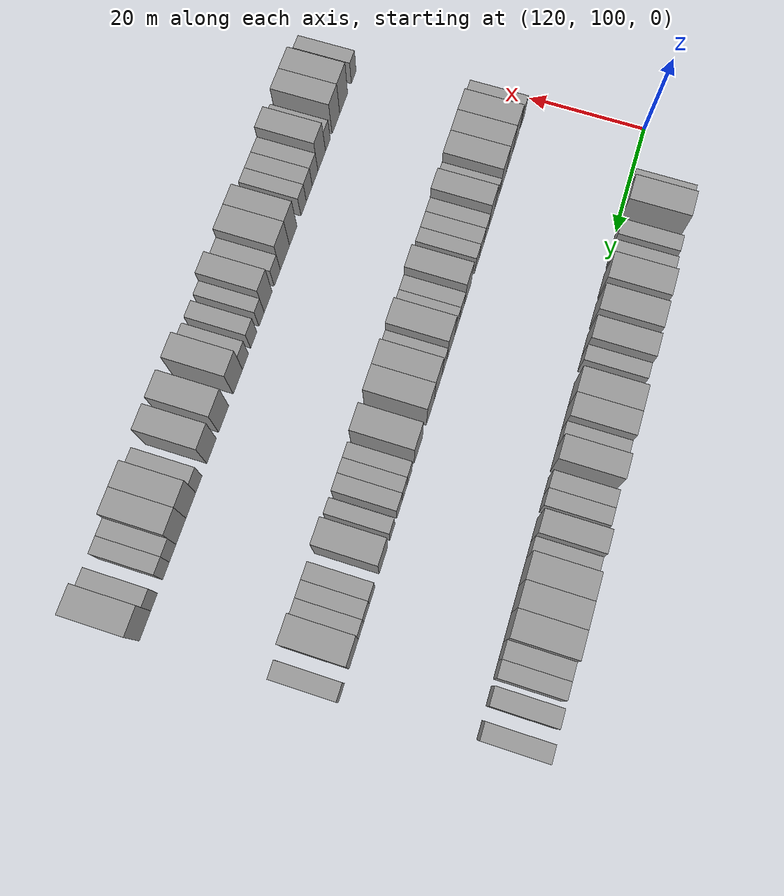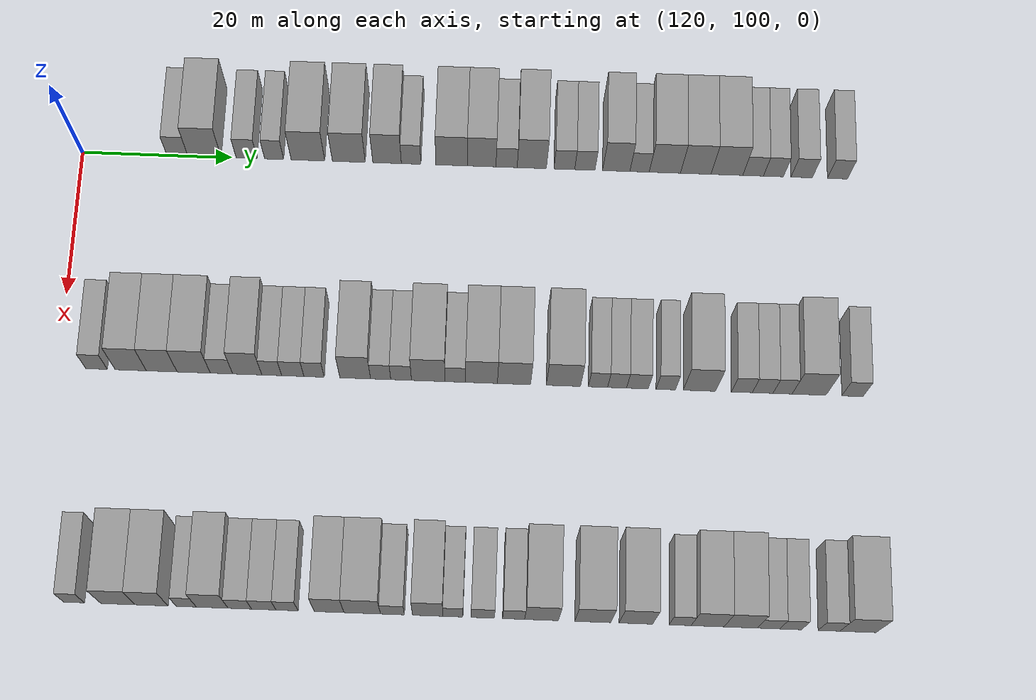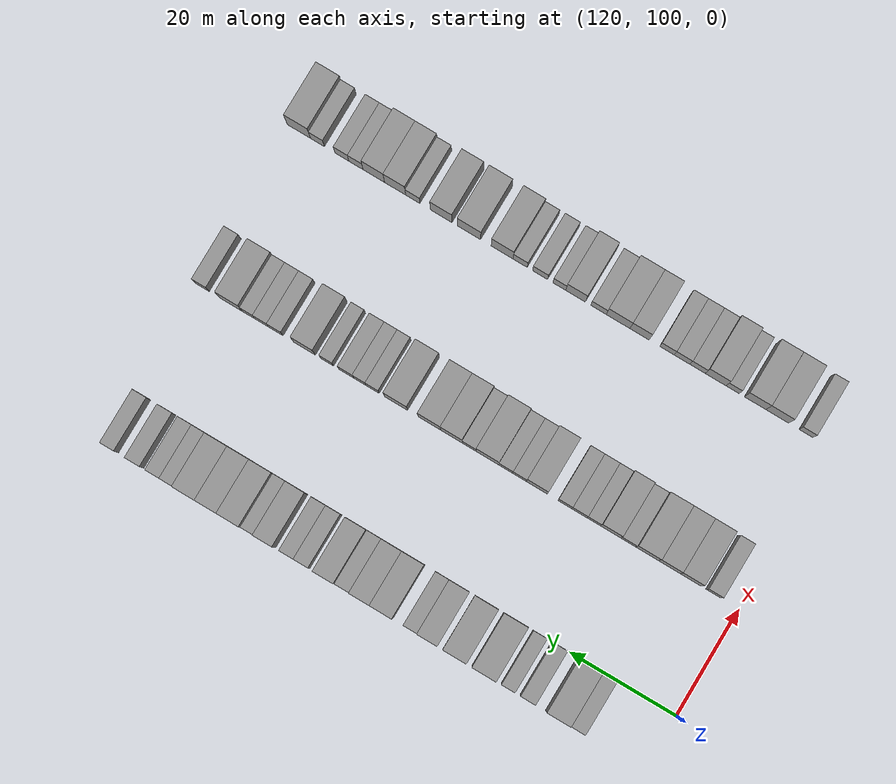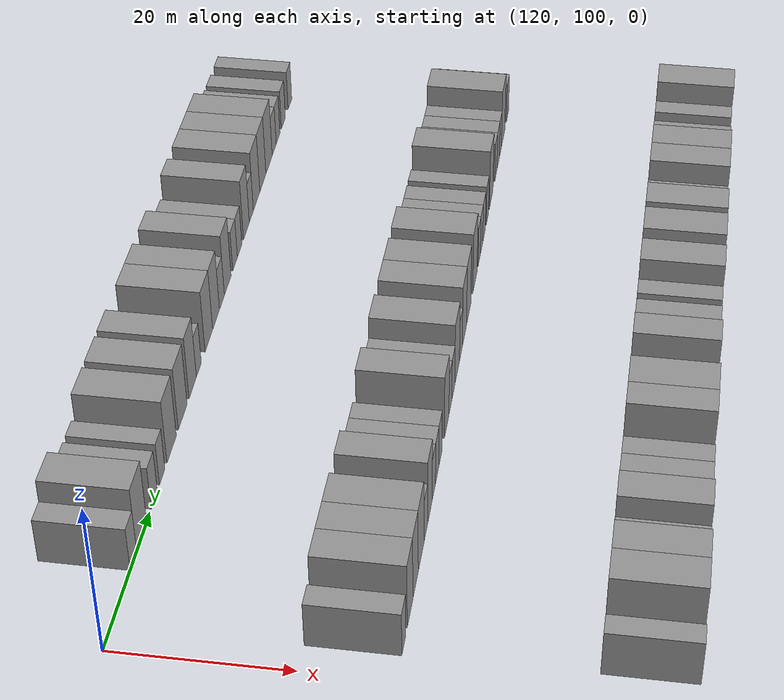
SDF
<sdf version="1.6">
 <world name="default">
  <model name="building_812">
   <static>1</static>
   <pose>115.0000 112.6629 0 0.000000 0.000000 0.000000</pose>
   <link name="link">
    <pose>0 0 3.00 0 0 0</pose>
    <collision name="collision"><geometry><box><size>10.0000 2.7988 6.0000</size></box></geometry></collision>
    <visual name="visual">
     <cast_shadows>0</cast_shadows>
     <geometry><box><size>10.0000 2.7988 6.0000</size></box></geometry>
     <material>
      <script>
       <uri>model://grey_wall/materials/scripts</uri>
       <uri>model://grey_wall/materials/textures</uri>
       <name>vrc/grey_wall</name>
      </script>
     </material>
    </visual>
   </link>
  </model>
  <model name="building_813">
   <static>1</static>
   <pose>115.0000 116.2817 0 0.000000 0.000000 0.000000</pose>
   <link name="link">
    <pose>0 0 4.50 0 0 0</pose>
    <collision name="collision"><geometry><box><size>10.0000 4.4386 9.0000</size></box></geometry></collision>
    <visual name="visual">
     <cast_shadows>0</cast_shadows>
     <geometry><box><size>10.0000 4.4386 9.0000</size></box></geometry>
     <material>
      <script>
       <uri>model://grey_wall/materials/scripts</uri>
       <uri>model://grey_wall/materials/textures</uri>
       <name>vrc/grey_wall</name>
      </script>
     </material>
    </visual>
   </link>
  </model>
  <model name="building_814">
   <static>1</static>
   <pose>115.0000 121.8972 0 0.000000 0.000000 0.000000</pose>
   <link name="link">
    <pose>0 0 3.00 0 0 0</pose>
    <collision name="collision"><geometry><box><size>10.0000 2.7925 6.0000</size></box></geometry></collision>
    <visual name="visual">
     <cast_shadows>0</cast_shadows>
     <geometry><box><size>10.0000 2.7925 6.0000</size></box></geometry>
     <material>
      <script>
       <uri>model://grey_wall/materials/scripts</uri>
       <uri>model://grey_wall/materials/textures</uri>
       <name>vrc/grey_wall</name>
      </script>
     </material>
    </visual>
   </link>
  </model>
  <model name="building_815">
   <static>1</static>
   <pose>115.0000 125.5632 0 0.000000 0.000000 0.000000</pose>
   <link name="link">
    <pose>0 0 3.00 0 0 0</pose>
    <collision name="collision"><geometry><box><size>10.0000 2.5395 6.0000</size></box></geometry></collision>
    <visual name="visual">
     <cast_shadows>0</cast_shadows>
     <geometry><box><size>10.0000 2.5395 6.0000</size></box></geometry>
     <material>
      <script>
       <uri>model://grey_wall/materials/scripts</uri>
       <uri>model://grey_wall/materials/textures</uri>
       <name>vrc/grey_wall</name>
      </script>
     </material>
    </visual>
   </link>
  </model>
  <model name="building_816">
   <static>1</static>
   <pose>115.0000 130.0789 0 0.000000 0.000000 0.000000</pose>
   <link name="link">
    <pose>0 0 4.50 0 0 0</pose>
    <collision name="collision"><geometry><box><size>10.0000 4.4918 9.0000</size></box></geometry></collision>
    <visual name="visual">
     <cast_shadows>0</cast_shadows>
     <geometry><box><size>10.0000 4.4918 9.0000</size></box></geometry>
     <material>
      <script>
       <uri>model://grey_wall/materials/scripts</uri>
       <uri>model://grey_wall/materials/textures</uri>
       <name>vrc/grey_wall</name>
      </script>
     </material>
    </visual>
   </link>
  </model>
  <model name="building_817">
   <static>1</static>
   <pose>115.0000 135.5179 0 0.000000 0.000000 0.000000</pose>
   <link name="link">
    <pose>0 0 4.50 0 0 0</pose>
    <collision name="collision"><geometry><box><size>10.0000 4.3863 9.0000</size></box></geometry></collision>
    <visual name="visual">
     <cast_shadows>0</cast_shadows>
     <geometry><box><size>10.0000 4.3863 9.0000</size></box></geometry>
     <material>
      <script>
       <uri>model://grey_wall/materials/scripts</uri>
       <uri>model://grey_wall/materials/textures</uri>
       <name>vrc/grey_wall</name>
      </script>
     </material>
    </visual>
   </link>
  </model>
  <model name="building_818">
   <static>1</static>
   <pose>115.0000 140.6104 0 0.000000 0.000000 0.000000</pose>
   <link name="link">
    <pose>0 0 4.50 0 0 0</pose>
    <collision name="collision"><geometry><box><size>10.0000 3.7988 9.0000</size></box></geometry></collision>
    <visual name="visual">
     <cast_shadows>0</cast_shadows>
     <geometry><box><size>10.0000 3.7988 9.0000</size></box></geometry>
     <material>
      <script>
       <uri>model://grey_wall/materials/scripts</uri>
       <uri>model://grey_wall/materials/textures</uri>
       <name>vrc/grey_wall</name>
      </script>
     </material>
    </visual>
   </link>
  </model>
  <model name="building_819">
   <static>1</static>
   <pose>115.0000 143.8060 0 0.000000 0.000000 0.000000</pose>
   <link name="link">
    <pose>0 0 3.00 0 0 0</pose>
    <collision name="collision"><geometry><box><size>10.0000 2.5924 6.0000</size></box></geometry></collision>
    <visual name="visual">
     <cast_shadows>0</cast_shadows>
     <geometry><box><size>10.0000 2.5924 6.0000</size></box></geometry>
     <material>
      <script>
       <uri>model://grey_wall/materials/scripts</uri>
       <uri>model://grey_wall/materials/textures</uri>
       <name>vrc/grey_wall</name>
      </script>
     </material>
    </visual>
   </link>
  </model>
  <model name="building_820">
   <static>1</static>
   <pose>115.0000 149.1831 0 0.000000 0.000000 0.000000</pose>
   <link name="link">
    <pose>0 0 4.50 0 0 0</pose>
    <collision name="collision"><geometry><box><size>10.0000 4.1618 9.0000</size></box></geometry></collision>
    <visual name="visual">
     <cast_shadows>0</cast_shadows>
     <geometry><box><size>10.0000 4.1618 9.0000</size></box></geometry>
     <material>
      <script>
       <uri>model://grey_wall/materials/scripts</uri>
       <uri>model://grey_wall/materials/textures</uri>
       <name>vrc/grey_wall</name>
      </script>
     </material>
    </visual>
   </link>
  </model>
  <model name="building_821">
   <static>1</static>
   <pose>115.0000 153.1720 0 0.000000 0.000000 0.000000</pose>
   <link name="link">
    <pose>0 0 4.50 0 0 0</pose>
    <collision name="collision"><geometry><box><size>10.0000 3.8162 9.0000</size></box></geometry></collision>
    <visual name="visual">
     <cast_shadows>0</cast_shadows>
     <geometry><box><size>10.0000 3.8162 9.0000</size></box></geometry>
     <material>
      <script>
       <uri>model://grey_wall/materials/scripts</uri>
       <uri>model://grey_wall/materials/textures</uri>
       <name>vrc/grey_wall</name>
      </script>
     </material>
    </visual>
   </link>
  </model>
  <model name="building_822">
   <static>1</static>
   <pose>115.0000 156.4892 0 0.000000 0.000000 0.000000</pose>
   <link name="link">
    <pose>0 0 3.00 0 0 0</pose>
    <collision name="collision"><geometry><box><size>10.0000 2.8182 6.0000</size></box></geometry></collision>
    <visual name="visual">
     <cast_shadows>0</cast_shadows>
     <geometry><box><size>10.0000 2.8182 6.0000</size></box></geometry>
     <material>
      <script>
       <uri>model://grey_wall/materials/scripts</uri>
       <uri>model://grey_wall/materials/textures</uri>
       <name>vrc/grey_wall</name>
      </script>
     </material>
    </visual>
   </link>
  </model>
  <model name="building_823">
   <static>1</static>
   <pose>115.0000 159.8409 0 0.000000 0.000000 0.000000</pose>
   <link name="link">
    <pose>0 0 4.50 0 0 0</pose>
    <collision name="collision"><geometry><box><size>10.0000 3.8851 9.0000</size></box></geometry></collision>
    <visual name="visual">
     <cast_shadows>0</cast_shadows>
     <geometry><box><size>10.0000 3.8851 9.0000</size></box></geometry>
     <material>
      <script>
       <uri>model://grey_wall/materials/scripts</uri>
       <uri>model://grey_wall/materials/textures</uri>
       <name>vrc/grey_wall</name>
      </script>
     </material>
    </visual>
   </link>
  </model>
  <model name="building_824">
   <static>1</static>
   <pose>115.0000 164.1628 0 0.000000 0.000000 0.000000</pose>
   <link name="link">
    <pose>0 0 3.00 0 0 0</pose>
    <collision name="collision"><geometry><box><size>10.0000 2.7585 6.0000</size></box></geometry></collision>
    <visual name="visual">
     <cast_shadows>0</cast_shadows>
     <geometry><box><size>10.0000 2.7585 6.0000</size></box></geometry>
     <material>
      <script>
       <uri>model://grey_wall/materials/scripts</uri>
       <uri>model://grey_wall/materials/textures</uri>
       <name>vrc/grey_wall</name>
      </script>
     </material>
    </visual>
   </link>
  </model>
  <model name="building_825">
   <static>1</static>
   <pose>115.0000 166.8924 0 0.000000 0.000000 0.000000</pose>
   <link name="link">
    <pose>0 0 3.00 0 0 0</pose>
    <collision name="collision"><geometry><box><size>10.0000 2.7008 6.0000</size></box></geometry></collision>
    <visual name="visual">
     <cast_shadows>0</cast_shadows>
     <geometry><box><size>10.0000 2.7008 6.0000</size></box></geometry>
     <material>
      <script>
       <uri>model://grey_wall/materials/scripts</uri>
       <uri>model://grey_wall/materials/textures</uri>
       <name>vrc/grey_wall</name>
      </script>
     </material>
    </visual>
   </link>
  </model>
  <model name="building_826">
   <static>1</static>
   <pose>115.0000 171.0539 0 0.000000 0.000000 0.000000</pose>
   <link name="link">
    <pose>0 0 4.50 0 0 0</pose>
    <collision name="collision"><geometry><box><size>10.0000 3.6221 9.0000</size></box></geometry></collision>
    <visual name="visual">
     <cast_shadows>0</cast_shadows>
     <geometry><box><size>10.0000 3.6221 9.0000</size></box></geometry>
     <material>
      <script>
       <uri>model://grey_wall/materials/scripts</uri>
       <uri>model://grey_wall/materials/textures</uri>
       <name>vrc/grey_wall</name>
      </script>
     </material>
    </visual>
   </link>
  </model>
  <model name="building_827">
   <static>1</static>
   <pose>115.0000 174.1461 0 0.000000 0.000000 0.000000</pose>
   <link name="link">
    <pose>0 0 3.00 0 0 0</pose>
    <collision name="collision"><geometry><box><size>10.0000 2.5623 6.0000</size></box></geometry></collision>
    <visual name="visual">
     <cast_shadows>0</cast_shadows>
     <geometry><box><size>10.0000 2.5623 6.0000</size></box></geometry>
     <material>
      <script>
       <uri>model://grey_wall/materials/scripts</uri>
       <uri>model://grey_wall/materials/textures</uri>
       <name>vrc/grey_wall</name>
      </script>
     </material>
    </visual>
   </link>
  </model>
  <model name="building_828">
   <static>1</static>
   <pose>115.0000 177.5042 0 0.000000 0.000000 0.000000</pose>
   <link name="link">
    <pose>0 0 4.50 0 0 0</pose>
    <collision name="collision"><geometry><box><size>10.0000 4.1539 9.0000</size></box></geometry></collision>
    <visual name="visual">
     <cast_shadows>0</cast_shadows>
     <geometry><box><size>10.0000 4.1539 9.0000</size></box></geometry>
     <material>
      <script>
       <uri>model://grey_wall/materials/scripts</uri>
       <uri>model://grey_wall/materials/textures</uri>
       <name>vrc/grey_wall</name>
      </script>
     </material>
    </visual>
   </link>
  </model>
  <model name="building_829">
   <static>1</static>
   <pose>115.0000 181.6020 0 0.000000 0.000000 0.000000</pose>
   <link name="link">
    <pose>0 0 4.50 0 0 0</pose>
    <collision name="collision"><geometry><box><size>10.0000 4.0418 9.0000</size></box></geometry></collision>
    <visual name="visual">
     <cast_shadows>0</cast_shadows>
     <geometry><box><size>10.0000 4.0418 9.0000</size></box></geometry>
     <material>
      <script>
       <uri>model://grey_wall/materials/scripts</uri>
       <uri>model://grey_wall/materials/textures</uri>
       <name>vrc/grey_wall</name>
      </script>
     </material>
    </visual>
   </link>
  </model>
  <model name="building_830">
   <static>1</static>
   <pose>115.0000 185.7370 0 0.000000 0.000000 0.000000</pose>
   <link name="link">
    <pose>0 0 4.50 0 0 0</pose>
    <collision name="collision"><geometry><box><size>10.0000 4.2282 9.0000</size></box></geometry></collision>
    <visual name="visual">
     <cast_shadows>0</cast_shadows>
     <geometry><box><size>10.0000 4.2282 9.0000</size></box></geometry>
     <material>
      <script>
       <uri>model://grey_wall/materials/scripts</uri>
       <uri>model://grey_wall/materials/textures</uri>
       <name>vrc/grey_wall</name>
      </script>
     </material>
    </visual>
   </link>
  </model>
  <model name="building_831">
   <static>1</static>
   <pose>115.0000 189.2227 0 0.000000 0.000000 0.000000</pose>
   <link name="link">
    <pose>0 0 3.00 0 0 0</pose>
    <collision name="collision"><geometry><box><size>10.0000 2.7432 6.0000</size></box></geometry></collision>
    <visual name="visual">
     <cast_shadows>0</cast_shadows>
     <geometry><box><size>10.0000 2.7432 6.0000</size></box></geometry>
     <material>
      <script>
       <uri>model://grey_wall/materials/scripts</uri>
       <uri>model://grey_wall/materials/textures</uri>
       <name>vrc/grey_wall</name>
      </script>
     </material>
    </visual>
   </link>
  </model>
  <model name="building_832">
   <static>1</static>
   <pose>115.0000 191.9150 0 0.000000 0.000000 0.000000</pose>
   <link name="link">
    <pose>0 0 3.00 0 0 0</pose>
    <collision name="collision"><geometry><box><size>10.0000 2.6414 6.0000</size></box></geometry></collision>
    <visual name="visual">
     <cast_shadows>0</cast_shadows>
     <geometry><box><size>10.0000 2.6414 6.0000</size></box></geometry>
     <material>
      <script>
       <uri>model://grey_wall/materials/scripts</uri>
       <uri>model://grey_wall/materials/textures</uri>
       <name>vrc/grey_wall</name>
      </script>
     </material>
    </visual>
   </link>
  </model>
  <model name="building_833">
   <static>1</static>
   <pose>115.0000 195.6476 0 0.000000 0.000000 0.000000</pose>
   <link name="link">
    <pose>0 0 3.00 0 0 0</pose>
    <collision name="collision"><geometry><box><size>10.0000 2.8238 6.0000</size></box></geometry></collision>
    <visual name="visual">
     <cast_shadows>0</cast_shadows>
     <geometry><box><size>10.0000 2.8238 6.0000</size></box></geometry>
     <material>
      <script>
       <uri>model://grey_wall/materials/scripts</uri>
       <uri>model://grey_wall/materials/textures</uri>
       <name>vrc/grey_wall</name>
      </script>
     </material>
    </visual>
   </link>
  </model>
  <model name="building_834">
   <static>1</static>
   <pose>115.0000 200.3842 0 0.000000 0.000000 0.000000</pose>
   <link name="link">
    <pose>0 0 3.00 0 0 0</pose>
    <collision name="collision"><geometry><box><size>10.0000 2.6494 6.0000</size></box></geometry></collision>
    <visual name="visual">
     <cast_shadows>0</cast_shadows>
     <geometry><box><size>10.0000 2.6494 6.0000</size></box></geometry>
     <material>
      <script>
       <uri>model://grey_wall/materials/scripts</uri>
       <uri>model://grey_wall/materials/textures</uri>
       <name>vrc/grey_wall</name>
      </script>
     </material>
    </visual>
   </link>
  </model>
  <model name="building_1032">
   <static>1</static>
   <pose>145.0000 104.9043 0 0.000000 0.000000 0.000000</pose>
   <link name="link">
    <pose>0 0 3.00 0 0 0</pose>
    <collision name="collision"><geometry><box><size>10.0000 2.7650 6.0000</size></box></geometry></collision>
    <visual name="visual">
     <cast_shadows>0</cast_shadows>
     <geometry><box><size>10.0000 2.7650 6.0000</size></box></geometry>
     <material>
      <script>
       <uri>model://grey_wall/materials/scripts</uri>
       <uri>model://grey_wall/materials/textures</uri>
       <name>vrc/grey_wall</name>
      </script>
     </material>
    </visual>
   </link>
  </model>
  <model name="building_1033">
   <static>1</static>
   <pose>145.0000 109.2876 0 0.000000 0.000000 0.000000</pose>
   <link name="link">
    <pose>0 0 4.50 0 0 0</pose>
    <collision name="collision"><geometry><box><size>10.0000 4.0017 9.0000</size></box></geometry></collision>
    <visual name="visual">
     <cast_shadows>0</cast_shadows>
     <geometry><box><size>10.0000 4.0017 9.0000</size></box></geometry>
     <material>
      <script>
       <uri>model://grey_wall/materials/scripts</uri>
       <uri>model://grey_wall/materials/textures</uri>
       <name>vrc/grey_wall</name>
      </script>
     </material>
    </visual>
   </link>
  </model>
  <model name="building_1034">
   <static>1</static>
   <pose>145.0000 113.2615 0 0.000000 0.000000 0.000000</pose>
   <link name="link">
    <pose>0 0 4.50 0 0 0</pose>
    <collision name="collision"><geometry><box><size>10.0000 3.9459 9.0000</size></box></geometry></collision>
    <visual name="visual">
     <cast_shadows>0</cast_shadows>
     <geometry><box><size>10.0000 3.9459 9.0000</size></box></geometry>
     <material>
      <script>
       <uri>model://grey_wall/materials/scripts</uri>
       <uri>model://grey_wall/materials/textures</uri>
       <name>vrc/grey_wall</name>
      </script>
     </material>
    </visual>
   </link>
  </model>
  <model name="building_1035">
   <static>1</static>
   <pose>145.0000 117.3630 0 0.000000 0.000000 0.000000</pose>
   <link name="link">
    <pose>0 0 4.50 0 0 0</pose>
    <collision name="collision"><geometry><box><size>10.0000 4.2571 9.0000</size></box></geometry></collision>
    <visual name="visual">
     <cast_shadows>0</cast_shadows>
     <geometry><box><size>10.0000 4.2571 9.0000</size></box></geometry>
     <material>
      <script>
       <uri>model://grey_wall/materials/scripts</uri>
       <uri>model://grey_wall/materials/textures</uri>
       <name>vrc/grey_wall</name>
      </script>
     </material>
    </visual>
   </link>
  </model>
  <model name="building_1036">
   <static>1</static>
   <pose>145.0000 120.9271 0 0.000000 0.000000 0.000000</pose>
   <link name="link">
    <pose>0 0 3.00 0 0 0</pose>
    <collision name="collision"><geometry><box><size>10.0000 2.8712 6.0000</size></box></geometry></collision>
    <visual name="visual">
     <cast_shadows>0</cast_shadows>
     <geometry><box><size>10.0000 2.8712 6.0000</size></box></geometry>
     <material>
      <script>
       <uri>model://grey_wall/materials/scripts</uri>
       <uri>model://grey_wall/materials/textures</uri>
       <name>vrc/grey_wall</name>
      </script>
     </material>
    </visual>
   </link>
  </model>
  <model name="building_1037">
   <static>1</static>
   <pose>145.0000 124.2290 0 0.000000 0.000000 0.000000</pose>
   <link name="link">
    <pose>0 0 4.50 0 0 0</pose>
    <collision name="collision"><geometry><box><size>10.0000 3.7326 9.0000</size></box></geometry></collision>
    <visual name="visual">
     <cast_shadows>0</cast_shadows>
     <geometry><box><size>10.0000 3.7326 9.0000</size></box></geometry>
     <material>
      <script>
       <uri>model://grey_wall/materials/scripts</uri>
       <uri>model://grey_wall/materials/textures</uri>
       <name>vrc/grey_wall</name>
      </script>
     </material>
    </visual>
   </link>
  </model>
  <model name="building_1038">
   <static>1</static>
   <pose>145.0000 127.3704 0 0.000000 0.000000 0.000000</pose>
   <link name="link">
    <pose>0 0 3.00 0 0 0</pose>
    <collision name="collision"><geometry><box><size>10.0000 2.5501 6.0000</size></box></geometry></collision>
    <visual name="visual">
     <cast_shadows>0</cast_shadows>
     <geometry><box><size>10.0000 2.5501 6.0000</size></box></geometry>
     <material>
      <script>
       <uri>model://grey_wall/materials/scripts</uri>
       <uri>model://grey_wall/materials/textures</uri>
       <name>vrc/grey_wall</name>
      </script>
     </material>
    </visual>
   </link>
  </model>
  <model name="building_1039">
   <static>1</static>
   <pose>145.0000 130.0685 0 0.000000 0.000000 0.000000</pose>
   <link name="link">
    <pose>0 0 3.00 0 0 0</pose>
    <collision name="collision"><geometry><box><size>10.0000 2.8463 6.0000</size></box></geometry></collision>
    <visual name="visual">
     <cast_shadows>0</cast_shadows>
     <geometry><box><size>10.0000 2.8463 6.0000</size></box></geometry>
     <material>
      <script>
       <uri>model://grey_wall/materials/scripts</uri>
       <uri>model://grey_wall/materials/textures</uri>
       <name>vrc/grey_wall</name>
      </script>
     </material>
    </visual>
   </link>
  </model>
  <model name="building_1040">
   <static>1</static>
   <pose>145.0000 132.7916 0 0.000000 0.000000 0.000000</pose>
   <link name="link">
    <pose>0 0 3.00 0 0 0</pose>
    <collision name="collision"><geometry><box><size>10.0000 2.5998 6.0000</size></box></geometry></collision>
    <visual name="visual">
     <cast_shadows>0</cast_shadows>
     <geometry><box><size>10.0000 2.5998 6.0000</size></box></geometry>
     <material>
      <script>
       <uri>model://grey_wall/materials/scripts</uri>
       <uri>model://grey_wall/materials/textures</uri>
       <name>vrc/grey_wall</name>
      </script>
     </material>
    </visual>
   </link>
  </model>
  <model name="building_1041">
   <static>1</static>
   <pose>145.0000 138.0533 0 0.000000 0.000000 0.000000</pose>
   <link name="link">
    <pose>0 0 4.50 0 0 0</pose>
    <collision name="collision"><geometry><box><size>10.0000 3.9238 9.0000</size></box></geometry></collision>
    <visual name="visual">
     <cast_shadows>0</cast_shadows>
     <geometry><box><size>10.0000 3.9238 9.0000</size></box></geometry>
     <material>
      <script>
       <uri>model://grey_wall/materials/scripts</uri>
       <uri>model://grey_wall/materials/textures</uri>
       <name>vrc/grey_wall</name>
      </script>
     </material>
    </visual>
   </link>
  </model>
  <model name="building_1042">
   <static>1</static>
   <pose>145.0000 141.3085 0 0.000000 0.000000 0.000000</pose>
   <link name="link">
    <pose>0 0 3.00 0 0 0</pose>
    <collision name="collision"><geometry><box><size>10.0000 2.5866 6.0000</size></box></geometry></collision>
    <visual name="visual">
     <cast_shadows>0</cast_shadows>
     <geometry><box><size>10.0000 2.5866 6.0000</size></box></geometry>
     <material>
      <script>
       <uri>model://grey_wall/materials/scripts</uri>
       <uri>model://grey_wall/materials/textures</uri>
       <name>vrc/grey_wall</name>
      </script>
     </material>
    </visual>
   </link>
  </model>
  <model name="building_1043">
   <static>1</static>
   <pose>145.0000 143.9235 0 0.000000 0.000000 0.000000</pose>
   <link name="link">
    <pose>0 0 3.00 0 0 0</pose>
    <collision name="collision"><geometry><box><size>10.0000 2.6432 6.0000</size></box></geometry></collision>
    <visual name="visual">
     <cast_shadows>0</cast_shadows>
     <geometry><box><size>10.0000 2.6432 6.0000</size></box></geometry>
     <material>
      <script>
       <uri>model://grey_wall/materials/scripts</uri>
       <uri>model://grey_wall/materials/textures</uri>
       <name>vrc/grey_wall</name>
      </script>
     </material>
    </visual>
   </link>
  </model>
  <model name="building_1044">
   <static>1</static>
   <pose>145.0000 147.3894 0 0.000000 0.000000 0.000000</pose>
   <link name="link">
    <pose>0 0 4.50 0 0 0</pose>
    <collision name="collision"><geometry><box><size>10.0000 4.2887 9.0000</size></box></geometry></collision>
    <visual name="visual">
     <cast_shadows>0</cast_shadows>
     <geometry><box><size>10.0000 4.2887 9.0000</size></box></geometry>
     <material>
      <script>
       <uri>model://grey_wall/materials/scripts</uri>
       <uri>model://grey_wall/materials/textures</uri>
       <name>vrc/grey_wall</name>
      </script>
     </material>
    </visual>
   </link>
  </model>
  <model name="building_1045">
   <static>1</static>
   <pose>145.0000 150.8413 0 0.000000 0.000000 0.000000</pose>
   <link name="link">
    <pose>0 0 3.00 0 0 0</pose>
    <collision name="collision"><geometry><box><size>10.0000 2.6151 6.0000</size></box></geometry></collision>
    <visual name="visual">
     <cast_shadows>0</cast_shadows>
     <geometry><box><size>10.0000 2.6151 6.0000</size></box></geometry>
     <material>
      <script>
       <uri>model://grey_wall/materials/scripts</uri>
       <uri>model://grey_wall/materials/textures</uri>
       <name>vrc/grey_wall</name>
      </script>
     </material>
    </visual>
   </link>
  </model>
  <model name="building_1046">
   <static>1</static>
   <pose>145.0000 154.1838 0 0.000000 0.000000 0.000000</pose>
   <link name="link">
    <pose>0 0 4.50 0 0 0</pose>
    <collision name="collision"><geometry><box><size>10.0000 4.0697 9.0000</size></box></geometry></collision>
    <visual name="visual">
     <cast_shadows>0</cast_shadows>
     <geometry><box><size>10.0000 4.0697 9.0000</size></box></geometry>
     <material>
      <script>
       <uri>model://grey_wall/materials/scripts</uri>
       <uri>model://grey_wall/materials/textures</uri>
       <name>vrc/grey_wall</name>
      </script>
     </material>
    </visual>
   </link>
  </model>
  <model name="building_1047">
   <static>1</static>
   <pose>145.0000 158.3363 0 0.000000 0.000000 0.000000</pose>
   <link name="link">
    <pose>0 0 4.50 0 0 0</pose>
    <collision name="collision"><geometry><box><size>10.0000 4.2354 9.0000</size></box></geometry></collision>
    <visual name="visual">
     <cast_shadows>0</cast_shadows>
     <geometry><box><size>10.0000 4.2354 9.0000</size></box></geometry>
     <material>
      <script>
       <uri>model://grey_wall/materials/scripts</uri>
       <uri>model://grey_wall/materials/textures</uri>
       <name>vrc/grey_wall</name>
      </script>
     </material>
    </visual>
   </link>
  </model>
  <model name="building_1048">
   <static>1</static>
   <pose>145.0000 164.6399 0 0.000000 0.000000 0.000000</pose>
   <link name="link">
    <pose>0 0 4.50 0 0 0</pose>
    <collision name="collision"><geometry><box><size>10.0000 4.3719 9.0000</size></box></geometry></collision>
    <visual name="visual">
     <cast_shadows>0</cast_shadows>
     <geometry><box><size>10.0000 4.3719 9.0000</size></box></geometry>
     <material>
      <script>
       <uri>model://grey_wall/materials/scripts</uri>
       <uri>model://grey_wall/materials/textures</uri>
       <name>vrc/grey_wall</name>
      </script>
     </material>
    </visual>
   </link>
  </model>
  <model name="building_1049">
   <static>1</static>
   <pose>145.0000 169.0537 0 0.000000 0.000000 0.000000</pose>
   <link name="link">
    <pose>0 0 3.00 0 0 0</pose>
    <collision name="collision"><geometry><box><size>10.0000 2.4556 6.0000</size></box></geometry></collision>
    <visual name="visual">
     <cast_shadows>0</cast_shadows>
     <geometry><box><size>10.0000 2.4556 6.0000</size></box></geometry>
     <material>
      <script>
       <uri>model://grey_wall/materials/scripts</uri>
       <uri>model://grey_wall/materials/textures</uri>
       <name>vrc/grey_wall</name>
      </script>
     </material>
    </visual>
   </link>
  </model>
  <model name="building_1050">
   <static>1</static>
   <pose>145.0000 171.4916 0 0.000000 0.000000 0.000000</pose>
   <link name="link">
    <pose>0 0 3.00 0 0 0</pose>
    <collision name="collision"><geometry><box><size>10.0000 2.4203 6.0000</size></box></geometry></collision>
    <visual name="visual">
     <cast_shadows>0</cast_shadows>
     <geometry><box><size>10.0000 2.4203 6.0000</size></box></geometry>
     <material>
      <script>
       <uri>model://grey_wall/materials/scripts</uri>
       <uri>model://grey_wall/materials/textures</uri>
       <name>vrc/grey_wall</name>
      </script>
     </material>
    </visual>
   </link>
  </model>
  <model name="building_1051">
   <static>1</static>
   <pose>145.0000 174.0862 0 0.000000 0.000000 0.000000</pose>
   <link name="link">
    <pose>0 0 3.00 0 0 0</pose>
    <collision name="collision"><geometry><box><size>10.0000 2.7689 6.0000</size></box></geometry></collision>
    <visual name="visual">
     <cast_shadows>0</cast_shadows>
     <geometry><box><size>10.0000 2.7689 6.0000</size></box></geometry>
     <material>
      <script>
       <uri>model://grey_wall/materials/scripts</uri>
       <uri>model://grey_wall/materials/textures</uri>
       <name>vrc/grey_wall</name>
      </script>
     </material>
    </visual>
   </link>
  </model>
  <model name="building_1052">
   <static>1</static>
   <pose>145.0000 177.7015 0 0.000000 0.000000 0.000000</pose>
   <link name="link">
    <pose>0 0 3.00 0 0 0</pose>
    <collision name="collision"><geometry><box><size>10.0000 2.4616 6.0000</size></box></geometry></collision>
    <visual name="visual">
     <cast_shadows>0</cast_shadows>
     <geometry><box><size>10.0000 2.4616 6.0000</size></box></geometry>
     <material>
      <script>
       <uri>model://grey_wall/materials/scripts</uri>
       <uri>model://grey_wall/materials/textures</uri>
       <name>vrc/grey_wall</name>
      </script>
     </material>
    </visual>
   </link>
  </model>
  <model name="building_1053">
   <static>1</static>
   <pose>145.0000 181.9979 0 0.000000 0.000000 0.000000</pose>
   <link name="link">
    <pose>0 0 4.50 0 0 0</pose>
    <collision name="collision"><geometry><box><size>10.0000 4.1312 9.0000</size></box></geometry></collision>
    <visual name="visual">
     <cast_shadows>0</cast_shadows>
     <geometry><box><size>10.0000 4.1312 9.0000</size></box></geometry>
     <material>
      <script>
       <uri>model://grey_wall/materials/scripts</uri>
       <uri>model://grey_wall/materials/textures</uri>
       <name>vrc/grey_wall</name>
      </script>
     </material>
    </visual>
   </link>
  </model>
  <model name="building_1054">
   <static>1</static>
   <pose>145.0000 187.4004 0 0.000000 0.000000 0.000000</pose>
   <link name="link">
    <pose>0 0 3.00 0 0 0</pose>
    <collision name="collision"><geometry><box><size>10.0000 2.6737 6.0000</size></box></geometry></collision>
    <visual name="visual">
     <cast_shadows>0</cast_shadows>
     <geometry><box><size>10.0000 2.6737 6.0000</size></box></geometry>
     <material>
      <script>
       <uri>model://grey_wall/materials/scripts</uri>
       <uri>model://grey_wall/materials/textures</uri>
       <name>vrc/grey_wall</name>
      </script>
     </material>
    </visual>
   </link>
  </model>
  <model name="building_1055">
   <static>1</static>
   <pose>145.0000 190.0532 0 0.000000 0.000000 0.000000</pose>
   <link name="link">
    <pose>0 0 3.00 0 0 0</pose>
    <collision name="collision"><geometry><box><size>10.0000 2.6319 6.0000</size></box></geometry></collision>
    <visual name="visual">
     <cast_shadows>0</cast_shadows>
     <geometry><box><size>10.0000 2.6319 6.0000</size></box></geometry>
     <material>
      <script>
       <uri>model://grey_wall/materials/scripts</uri>
       <uri>model://grey_wall/materials/textures</uri>
       <name>vrc/grey_wall</name>
      </script>
     </material>
    </visual>
   </link>
  </model>
  <model name="building_1056">
   <static>1</static>
   <pose>145.0000 192.5876 0 0.000000 0.000000 0.000000</pose>
   <link name="link">
    <pose>0 0 3.00 0 0 0</pose>
    <collision name="collision"><geometry><box><size>10.0000 2.4370 6.0000</size></box></geometry></collision>
    <visual name="visual">
     <cast_shadows>0</cast_shadows>
     <geometry><box><size>10.0000 2.4370 6.0000</size></box></geometry>
     <material>
      <script>
       <uri>model://grey_wall/materials/scripts</uri>
       <uri>model://grey_wall/materials/textures</uri>
       <name>vrc/grey_wall</name>
      </script>
     </material>
    </visual>
   </link>
  </model>
  <model name="building_1057">
   <static>1</static>
   <pose>145.0000 195.9631 0 0.000000 0.000000 0.000000</pose>
   <link name="link">
    <pose>0 0 4.50 0 0 0</pose>
    <collision name="collision"><geometry><box><size>10.0000 4.3140 9.0000</size></box></geometry></collision>
    <visual name="visual">
     <cast_shadows>0</cast_shadows>
     <geometry><box><size>10.0000 4.3140 9.0000</size></box></geometry>
     <material>
      <script>
       <uri>model://grey_wall/materials/scripts</uri>
       <uri>model://grey_wall/materials/textures</uri>
       <name>vrc/grey_wall</name>
      </script>
     </material>
    </visual>
   </link>
  </model>
  <model name="building_1058">
   <static>1</static>
   <pose>145.0000 201.4721 0 0.000000 0.000000 0.000000</pose>
   <link name="link">
    <pose>0 0 3.00 0 0 0</pose>
    <collision name="collision"><geometry><box><size>10.0000 2.7039 6.0000</size></box></geometry></collision>
    <visual name="visual">
     <cast_shadows>0</cast_shadows>
     <geometry><box><size>10.0000 2.7039 6.0000</size></box></geometry>
     <material>
      <script>
       <uri>model://grey_wall/materials/scripts</uri>
       <uri>model://grey_wall/materials/textures</uri>
       <name>vrc/grey_wall</name>
      </script>
     </material>
    </visual>
   </link>
  </model>
  <model name="building_1255">
   <static>1</static>
   <pose>175.0000 105.1752 0 0.000000 0.000000 0.000000</pose>
   <link name="link">
    <pose>0 0 3.00 0 0 0</pose>
    <collision name="collision"><geometry><box><size>10.0000 2.5733 6.0000</size></box></geometry></collision>
    <visual name="visual">
     <cast_shadows>0</cast_shadows>
     <geometry><box><size>10.0000 2.5733 6.0000</size></box></geometry>
     <material>
      <script>
       <uri>model://grey_wall/materials/scripts</uri>
       <uri>model://grey_wall/materials/textures</uri>
       <name>vrc/grey_wall</name>
      </script>
     </material>
    </visual>
   </link>
  </model>
  <model name="building_1256">
   <static>1</static>
   <pose>175.0000 110.5891 0 0.000000 0.000000 0.000000</pose>
   <link name="link">
    <pose>0 0 4.50 0 0 0</pose>
    <collision name="collision"><geometry><box><size>10.0000 4.2545 9.0000</size></box></geometry></collision>
    <visual name="visual">
     <cast_shadows>0</cast_shadows>
     <geometry><box><size>10.0000 4.2545 9.0000</size></box></geometry>
     <material>
      <script>
       <uri>model://grey_wall/materials/scripts</uri>
       <uri>model://grey_wall/materials/textures</uri>
       <name>vrc/grey_wall</name>
      </script>
     </material>
    </visual>
   </link>
  </model>
  <model name="building_1257">
   <static>1</static>
   <pose>175.0000 114.7334 0 0.000000 0.000000 0.000000</pose>
   <link name="link">
    <pose>0 0 4.50 0 0 0</pose>
    <collision name="collision"><geometry><box><size>10.0000 4.0340 9.0000</size></box></geometry></collision>
    <visual name="visual">
     <cast_shadows>0</cast_shadows>
     <geometry><box><size>10.0000 4.0340 9.0000</size></box></geometry>
     <material>
      <script>
       <uri>model://grey_wall/materials/scripts</uri>
       <uri>model://grey_wall/materials/textures</uri>
       <name>vrc/grey_wall</name>
      </script>
     </material>
    </visual>
   </link>
  </model>
  <model name="building_1258">
   <static>1</static>
   <pose>175.0000 118.9810 0 0.000000 0.000000 0.000000</pose>
   <link name="link">
    <pose>0 0 3.00 0 0 0</pose>
    <collision name="collision"><geometry><box><size>10.0000 2.4613 6.0000</size></box></geometry></collision>
    <visual name="visual">
     <cast_shadows>0</cast_shadows>
     <geometry><box><size>10.0000 2.4613 6.0000</size></box></geometry>
     <material>
      <script>
       <uri>model://grey_wall/materials/scripts</uri>
       <uri>model://grey_wall/materials/textures</uri>
       <name>vrc/grey_wall</name>
      </script>
     </material>
    </visual>
   </link>
  </model>
  <model name="building_1259">
   <static>1</static>
   <pose>175.0000 122.1661 0 0.000000 0.000000 0.000000</pose>
   <link name="link">
    <pose>0 0 4.50 0 0 0</pose>
    <collision name="collision"><geometry><box><size>10.0000 3.9087 9.0000</size></box></geometry></collision>
    <visual name="visual">
     <cast_shadows>0</cast_shadows>
     <geometry><box><size>10.0000 3.9087 9.0000</size></box></geometry>
     <material>
      <script>
       <uri>model://grey_wall/materials/scripts</uri>
       <uri>model://grey_wall/materials/textures</uri>
       <name>vrc/grey_wall</name>
      </script>
     </material>
    </visual>
   </link>
  </model>
  <model name="building_1260">
   <static>1</static>
   <pose>175.0000 125.5662 0 0.000000 0.000000 0.000000</pose>
   <link name="link">
    <pose>0 0 3.00 0 0 0</pose>
    <collision name="collision"><geometry><box><size>10.0000 2.8916 6.0000</size></box></geometry></collision>
    <visual name="visual">
     <cast_shadows>0</cast_shadows>
     <geometry><box><size>10.0000 2.8916 6.0000</size></box></geometry>
     <material>
      <script>
       <uri>model://grey_wall/materials/scripts</uri>
       <uri>model://grey_wall/materials/textures</uri>
       <name>vrc/grey_wall</name>
      </script>
     </material>
    </visual>
   </link>
  </model>
  <model name="building_1261">
   <static>1</static>
   <pose>175.0000 128.5071 0 0.000000 0.000000 0.000000</pose>
   <link name="link">
    <pose>0 0 3.00 0 0 0</pose>
    <collision name="collision"><geometry><box><size>10.0000 2.9901 6.0000</size></box></geometry></collision>
    <visual name="visual">
     <cast_shadows>0</cast_shadows>
     <geometry><box><size>10.0000 2.9901 6.0000</size></box></geometry>
     <material>
      <script>
       <uri>model://grey_wall/materials/scripts</uri>
       <uri>model://grey_wall/materials/textures</uri>
       <name>vrc/grey_wall</name>
      </script>
     </material>
    </visual>
   </link>
  </model>
  <model name="building_1262">
   <static>1</static>
   <pose>175.0000 131.3614 0 0.000000 0.000000 0.000000</pose>
   <link name="link">
    <pose>0 0 3.00 0 0 0</pose>
    <collision name="collision"><geometry><box><size>10.0000 2.7184 6.0000</size></box></geometry></collision>
    <visual name="visual">
     <cast_shadows>0</cast_shadows>
     <geometry><box><size>10.0000 2.7184 6.0000</size></box></geometry>
     <material>
      <script>
       <uri>model://grey_wall/materials/scripts</uri>
       <uri>model://grey_wall/materials/textures</uri>
       <name>vrc/grey_wall</name>
      </script>
     </material>
    </visual>
   </link>
  </model>
  <model name="building_1263">
   <static>1</static>
   <pose>175.0000 136.5407 0 0.000000 0.000000 0.000000</pose>
   <link name="link">
    <pose>0 0 4.50 0 0 0</pose>
    <collision name="collision"><geometry><box><size>10.0000 3.6402 9.0000</size></box></geometry></collision>
    <visual name="visual">
     <cast_shadows>0</cast_shadows>
     <geometry><box><size>10.0000 3.6402 9.0000</size></box></geometry>
     <material>
      <script>
       <uri>model://grey_wall/materials/scripts</uri>
       <uri>model://grey_wall/materials/textures</uri>
       <name>vrc/grey_wall</name>
      </script>
     </material>
    </visual>
   </link>
  </model>
  <model name="building_1264">
   <static>1</static>
   <pose>175.0000 140.6020 0 0.000000 0.000000 0.000000</pose>
   <link name="link">
    <pose>0 0 4.50 0 0 0</pose>
    <collision name="collision"><geometry><box><size>10.0000 4.4824 9.0000</size></box></geometry></collision>
    <visual name="visual">
     <cast_shadows>0</cast_shadows>
     <geometry><box><size>10.0000 4.4824 9.0000</size></box></geometry>
     <material>
      <script>
       <uri>model://grey_wall/materials/scripts</uri>
       <uri>model://grey_wall/materials/textures</uri>
       <name>vrc/grey_wall</name>
      </script>
     </material>
    </visual>
   </link>
  </model>
  <model name="building_1265">
   <static>1</static>
   <pose>175.0000 144.3099 0 0.000000 0.000000 0.000000</pose>
   <link name="link">
    <pose>0 0 3.00 0 0 0</pose>
    <collision name="collision"><geometry><box><size>10.0000 2.9334 6.0000</size></box></geometry></collision>
    <visual name="visual">
     <cast_shadows>0</cast_shadows>
     <geometry><box><size>10.0000 2.9334 6.0000</size></box></geometry>
     <material>
      <script>
       <uri>model://grey_wall/materials/scripts</uri>
       <uri>model://grey_wall/materials/textures</uri>
       <name>vrc/grey_wall</name>
      </script>
     </material>
    </visual>
   </link>
  </model>
  <model name="building_1266">
   <static>1</static>
   <pose>175.0000 148.6376 0 0.000000 0.000000 0.000000</pose>
   <link name="link">
    <pose>0 0 4.50 0 0 0</pose>
    <collision name="collision"><geometry><box><size>10.0000 3.7220 9.0000</size></box></geometry></collision>
    <visual name="visual">
     <cast_shadows>0</cast_shadows>
     <geometry><box><size>10.0000 3.7220 9.0000</size></box></geometry>
     <material>
      <script>
       <uri>model://grey_wall/materials/scripts</uri>
       <uri>model://grey_wall/materials/textures</uri>
       <name>vrc/grey_wall</name>
      </script>
     </material>
    </visual>
   </link>
  </model>
  <model name="building_1267">
   <static>1</static>
   <pose>175.0000 151.7171 0 0.000000 0.000000 0.000000</pose>
   <link name="link">
    <pose>0 0 3.00 0 0 0</pose>
    <collision name="collision"><geometry><box><size>10.0000 2.4370 6.0000</size></box></geometry></collision>
    <visual name="visual">
     <cast_shadows>0</cast_shadows>
     <geometry><box><size>10.0000 2.4370 6.0000</size></box></geometry>
     <material>
      <script>
       <uri>model://grey_wall/materials/scripts</uri>
       <uri>model://grey_wall/materials/textures</uri>
       <name>vrc/grey_wall</name>
      </script>
     </material>
    </visual>
   </link>
  </model>
  <model name="building_1268">
   <static>1</static>
   <pose>175.0000 155.3624 0 0.000000 0.000000 0.000000</pose>
   <link name="link">
    <pose>0 0 3.00 0 0 0</pose>
    <collision name="collision"><geometry><box><size>10.0000 2.8537 6.0000</size></box></geometry></collision>
    <visual name="visual">
     <cast_shadows>0</cast_shadows>
     <geometry><box><size>10.0000 2.8537 6.0000</size></box></geometry>
     <material>
      <script>
       <uri>model://grey_wall/materials/scripts</uri>
       <uri>model://grey_wall/materials/textures</uri>
       <name>vrc/grey_wall</name>
      </script>
     </material>
    </visual>
   </link>
  </model>
  <model name="building_1269">
   <static>1</static>
   <pose>175.0000 159.1391 0 0.000000 0.000000 0.000000</pose>
   <link name="link">
    <pose>0 0 3.00 0 0 0</pose>
    <collision name="collision"><geometry><box><size>10.0000 2.6995 6.0000</size></box></geometry></collision>
    <visual name="visual">
     <cast_shadows>0</cast_shadows>
     <geometry><box><size>10.0000 2.6995 6.0000</size></box></geometry>
     <material>
      <script>
       <uri>model://grey_wall/materials/scripts</uri>
       <uri>model://grey_wall/materials/textures</uri>
       <name>vrc/grey_wall</name>
      </script>
     </material>
    </visual>
   </link>
  </model>
  <model name="building_1270">
   <static>1</static>
   <pose>175.0000 162.5646 0 0.000000 0.000000 0.000000</pose>
   <link name="link">
    <pose>0 0 4.50 0 0 0</pose>
    <collision name="collision"><geometry><box><size>10.0000 4.1517 9.0000</size></box></geometry></collision>
    <visual name="visual">
     <cast_shadows>0</cast_shadows>
     <geometry><box><size>10.0000 4.1517 9.0000</size></box></geometry>
     <material>
      <script>
       <uri>model://grey_wall/materials/scripts</uri>
       <uri>model://grey_wall/materials/textures</uri>
       <name>vrc/grey_wall</name>
      </script>
     </material>
    </visual>
   </link>
  </model>
  <model name="building_1271">
   <static>1</static>
   <pose>175.0000 168.8557 0 0.000000 0.000000 0.000000</pose>
   <link name="link">
    <pose>0 0 4.50 0 0 0</pose>
    <collision name="collision"><geometry><box><size>10.0000 4.4305 9.0000</size></box></geometry></collision>
    <visual name="visual">
     <cast_shadows>0</cast_shadows>
     <geometry><box><size>10.0000 4.4305 9.0000</size></box></geometry>
     <material>
      <script>
       <uri>model://grey_wall/materials/scripts</uri>
       <uri>model://grey_wall/materials/textures</uri>
       <name>vrc/grey_wall</name>
      </script>
     </material>
    </visual>
   </link>
  </model>
  <model name="building_1272">
   <static>1</static>
   <pose>175.0000 174.1243 0 0.000000 0.000000 0.000000</pose>
   <link name="link">
    <pose>0 0 4.50 0 0 0</pose>
    <collision name="collision"><geometry><box><size>10.0000 4.1067 9.0000</size></box></geometry></collision>
    <visual name="visual">
     <cast_shadows>0</cast_shadows>
     <geometry><box><size>10.0000 4.1067 9.0000</size></box></geometry>
     <material>
      <script>
       <uri>model://grey_wall/materials/scripts</uri>
       <uri>model://grey_wall/materials/textures</uri>
       <name>vrc/grey_wall</name>
      </script>
     </material>
    </visual>
   </link>
  </model>
  <model name="building_1273">
   <static>1</static>
   <pose>175.0000 179.5272 0 0.000000 0.000000 0.000000</pose>
   <link name="link">
    <pose>0 0 3.00 0 0 0</pose>
    <collision name="collision"><geometry><box><size>10.0000 2.6990 6.0000</size></box></geometry></collision>
    <visual name="visual">
     <cast_shadows>0</cast_shadows>
     <geometry><box><size>10.0000 2.6990 6.0000</size></box></geometry>
     <material>
      <script>
       <uri>model://grey_wall/materials/scripts</uri>
       <uri>model://grey_wall/materials/textures</uri>
       <name>vrc/grey_wall</name>
      </script>
     </material>
    </visual>
   </link>
  </model>
  <model name="building_1274">
   <static>1</static>
   <pose>175.0000 182.8925 0 0.000000 0.000000 0.000000</pose>
   <link name="link">
    <pose>0 0 4.50 0 0 0</pose>
    <collision name="collision"><geometry><box><size>10.0000 4.0317 9.0000</size></box></geometry></collision>
    <visual name="visual">
     <cast_shadows>0</cast_shadows>
     <geometry><box><size>10.0000 4.0317 9.0000</size></box></geometry>
     <material>
      <script>
       <uri>model://grey_wall/materials/scripts</uri>
       <uri>model://grey_wall/materials/textures</uri>
       <name>vrc/grey_wall</name>
      </script>
     </material>
    </visual>
   </link>
  </model>
  <model name="building_1275">
   <static>1</static>
   <pose>175.0000 186.9555 0 0.000000 0.000000 0.000000</pose>
   <link name="link">
    <pose>0 0 4.50 0 0 0</pose>
    <collision name="collision"><geometry><box><size>10.0000 4.0943 9.0000</size></box></geometry></collision>
    <visual name="visual">
     <cast_shadows>0</cast_shadows>
     <geometry><box><size>10.0000 4.0943 9.0000</size></box></geometry>
     <material>
      <script>
       <uri>model://grey_wall/materials/scripts</uri>
       <uri>model://grey_wall/materials/textures</uri>
       <name>vrc/grey_wall</name>
      </script>
     </material>
    </visual>
   </link>
  </model>
  <model name="building_1276">
   <static>1</static>
   <pose>175.0000 190.3574 0 0.000000 0.000000 0.000000</pose>
   <link name="link">
    <pose>0 0 3.00 0 0 0</pose>
    <collision name="collision"><geometry><box><size>10.0000 2.7096 6.0000</size></box></geometry></collision>
    <visual name="visual">
     <cast_shadows>0</cast_shadows>
     <geometry><box><size>10.0000 2.7096 6.0000</size></box></geometry>
     <material>
      <script>
       <uri>model://grey_wall/materials/scripts</uri>
       <uri>model://grey_wall/materials/textures</uri>
       <name>vrc/grey_wall</name>
      </script>
     </material>
    </visual>
   </link>
  </model>
  <model name="building_1277">
   <static>1</static>
   <pose>175.0000 193.0461 0 0.000000 0.000000 0.000000</pose>
   <link name="link">
    <pose>0 0 3.00 0 0 0</pose>
    <collision name="collision"><geometry><box><size>10.0000 2.6678 6.0000</size></box></geometry></collision>
    <visual name="visual">
     <cast_shadows>0</cast_shadows>
     <geometry><box><size>10.0000 2.6678 6.0000</size></box></geometry>
     <material>
      <script>
       <uri>model://grey_wall/materials/scripts</uri>
       <uri>model://grey_wall/materials/textures</uri>
       <name>vrc/grey_wall</name>
      </script>
     </material>
    </visual>
   </link>
  </model>
  <model name="building_1278">
   <static>1</static>
   <pose>175.0000 197.7142 0 0.000000 0.000000 0.000000</pose>
   <link name="link">
    <pose>0 0 3.00 0 0 0</pose>
    <collision name="collision"><geometry><box><size>10.0000 2.6685 6.0000</size></box></geometry></collision>
    <visual name="visual">
     <cast_shadows>0</cast_shadows>
     <geometry><box><size>10.0000 2.6685 6.0000</size></box></geometry>
     <material>
      <script>
       <uri>model://grey_wall/materials/scripts</uri>
       <uri>model://grey_wall/materials/textures</uri>
       <name>vrc/grey_wall</name>
      </script>
     </material>
    </visual>
   </link>
  </model>
  <model name="building_1279">
   <static>1</static>
   <pose>175.0000 201.2657 0 0.000000 0.000000 0.000000</pose>
   <link name="link">
    <pose>0 0 4.50 0 0 0</pose>
    <collision name="collision"><geometry><box><size>10.0000 4.4346 9.0000</size></box></geometry></collision>
    <visual name="visual">
     <cast_shadows>0</cast_shadows>
     <geometry><box><size>10.0000 4.4346 9.0000</size></box></geometry>
     <material>
      <script>
       <uri>model://grey_wall/materials/scripts</uri>
       <uri>model://grey_wall/materials/textures</uri>
       <name>vrc/grey_wall</name>
      </script>
     </material>
    </visual>
   </link>
  </model>
 </world>
</sdf>
